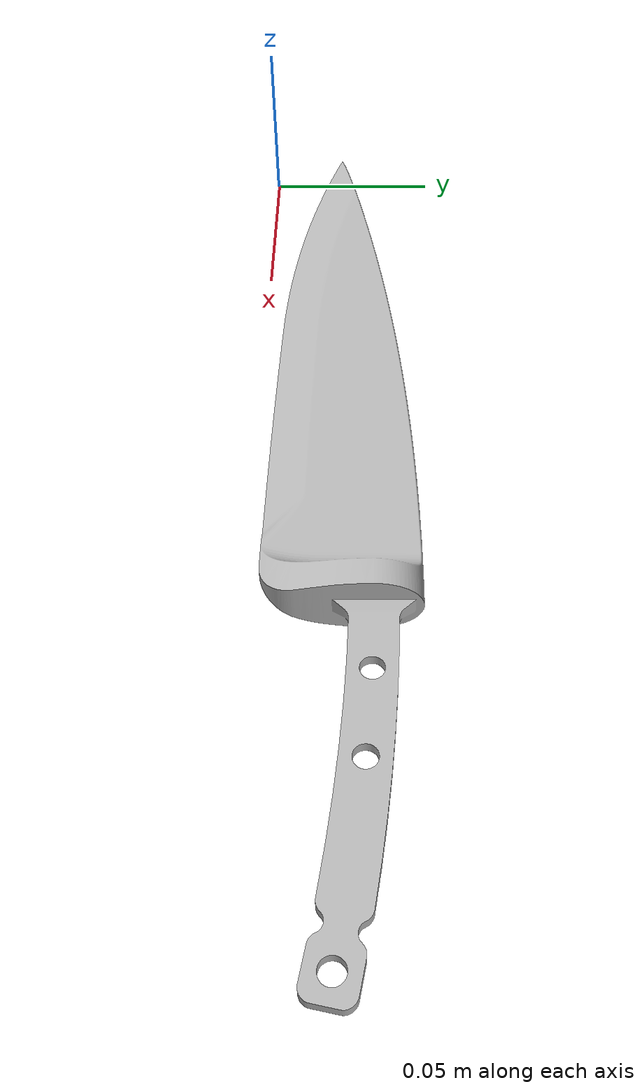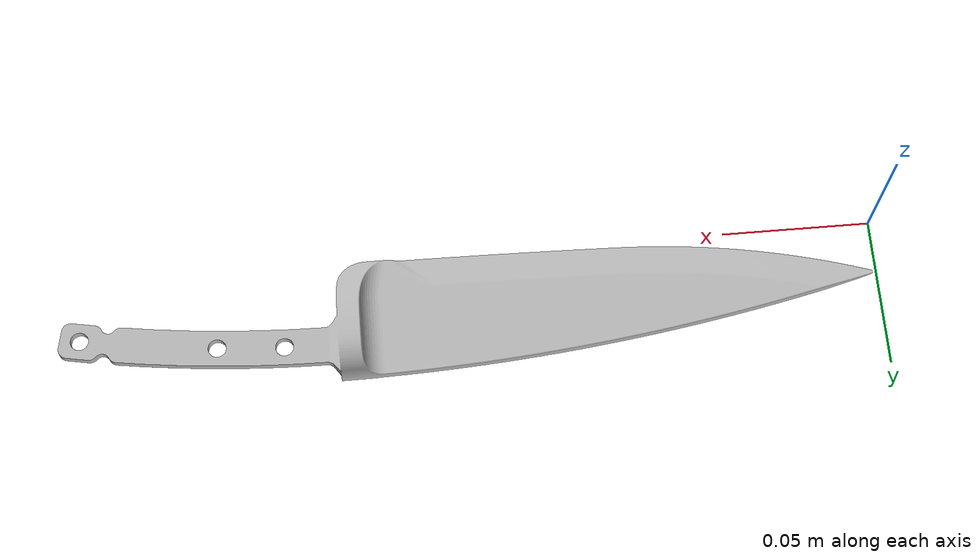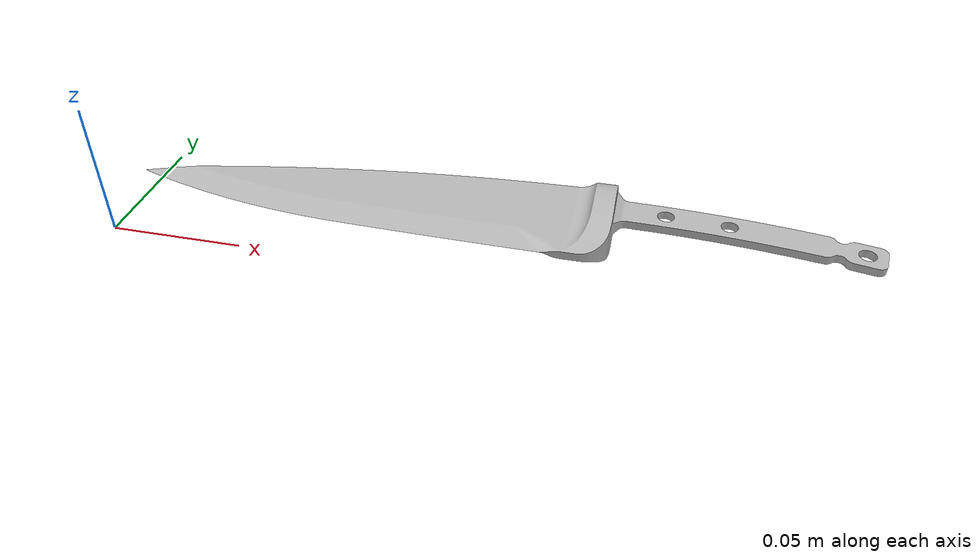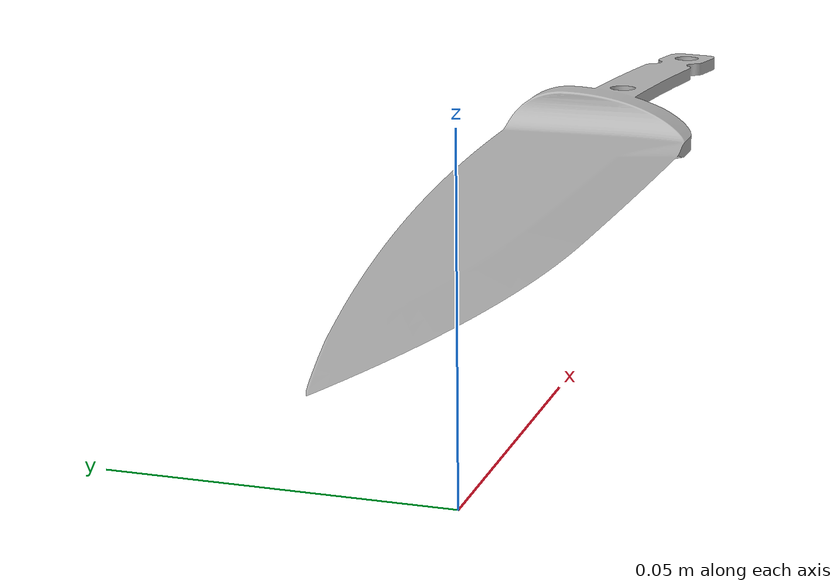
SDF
<?xml version="1.0" ?>
<sdf version="1.4">
  <model name="knife">
    <static>false</static>

    <link name="link">
      <pose>0.0 0 0.0 0 0 0</pose>
<inertial>
        <mass>0.1</mass>
      </inertial>
     <collision name='collision'>
     <geometry>
          <mesh>
            <uri>file:///home/austin/EECS484_project/simulation/src/image_recognition/knife/meshes/knife.dae</uri>
          </mesh>
        </geometry>
      </collision>

      <visual name="visual">
        <geometry>
          <mesh>
            <uri>file:///home/austin/EECS484_project/simulation/src/image_recognition/knife/meshes/knife.dae</uri>
          </mesh>
        </geometry>
      </visual>
    </link>
  </model>
</sdf>
